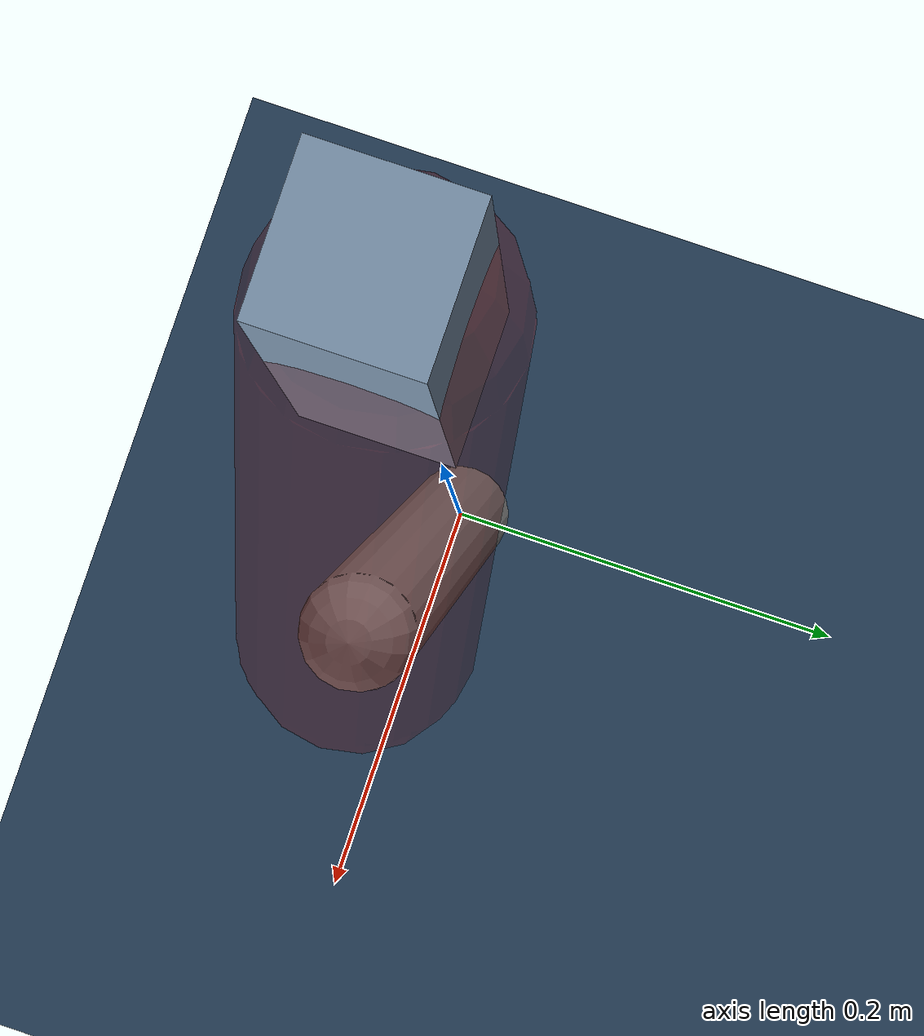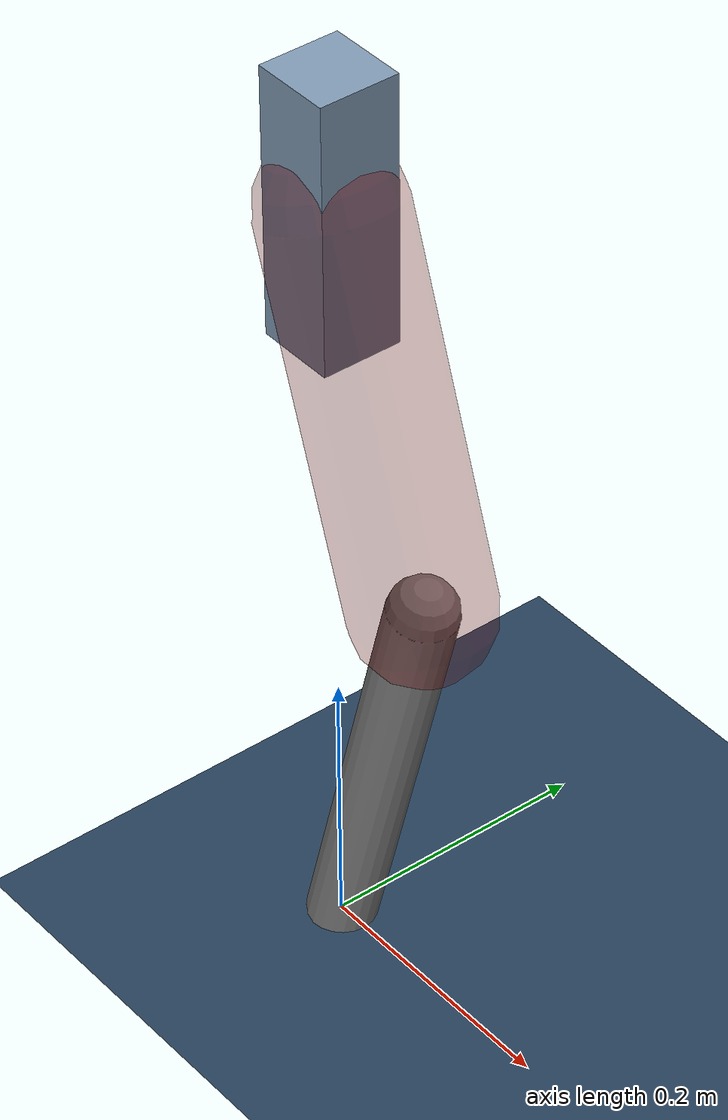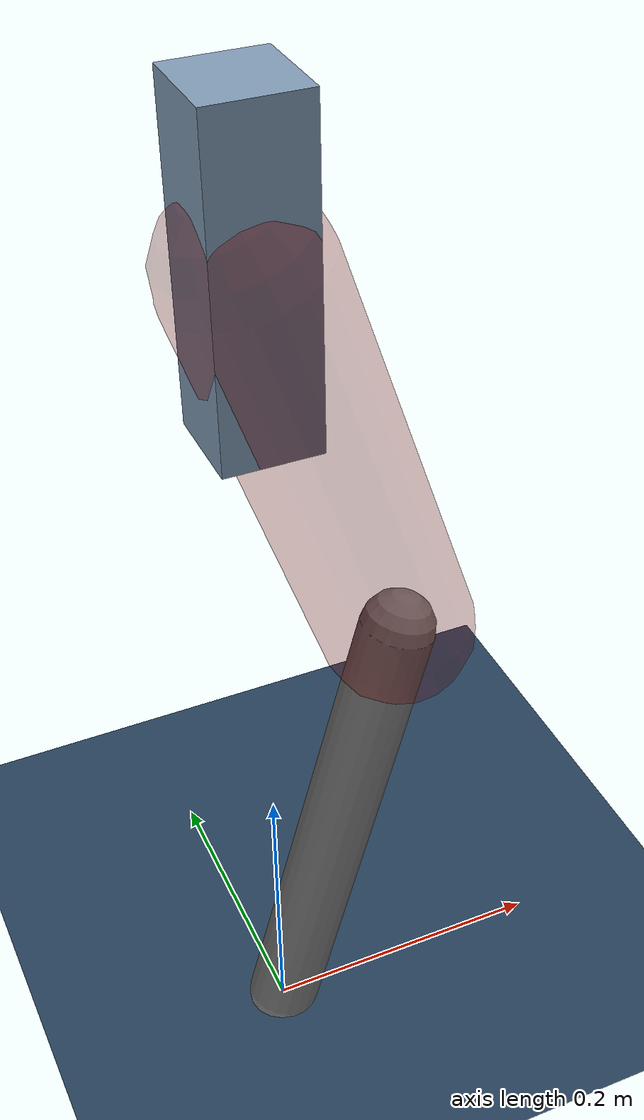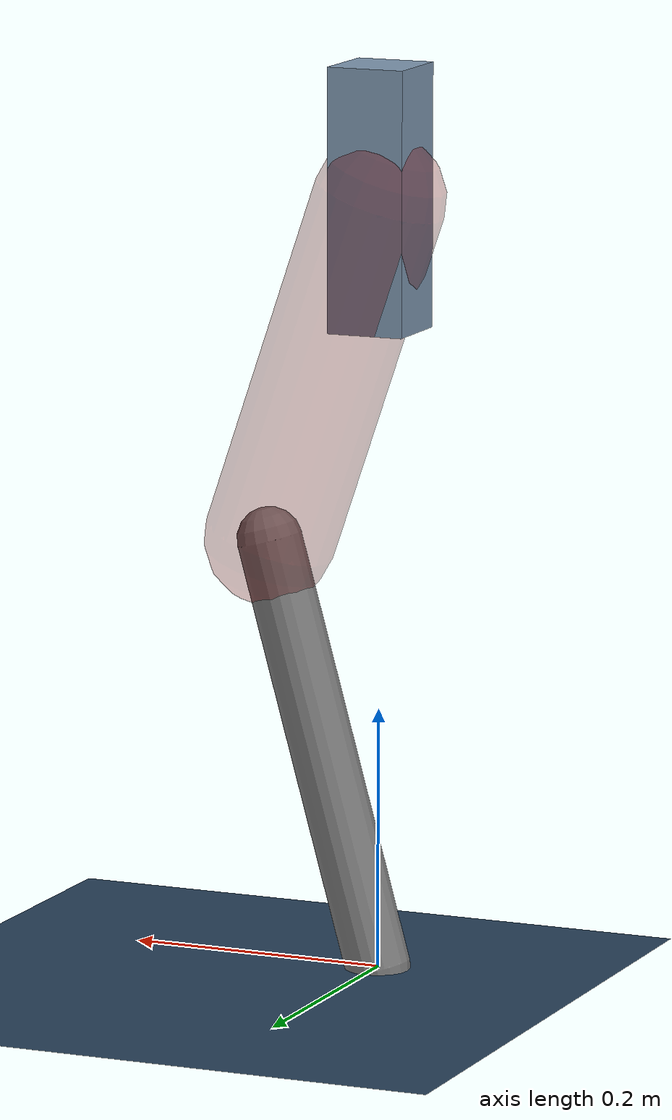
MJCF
<mujoco model="Hopper2D">
	<compiler inertiafromgeom="true" angle="radian" />
	<option timestep="0.001" integrator="implicit" cone="elliptic" solver="Newton" tolerance="1e-10" />

	<default>
		<geom contype="1" conaffinity="1" condim="3" friction="2 0.005 0.0001" solref="0.005 1" />
		<joint limited="true" damping="0.1" />
	</default>

	<asset>
		<texture name="skybox" type="skybox" builtin="gradient" rgb1=".4 .6 .8" rgb2="0 0 0" width="800" height="800" />
		<texture name="grid" type="2d" builtin="checker" rgb1=".1 .2 .3" rgb2=".2 .3 .4" width="300" height="300" mark="edge" markrgb=".2 .3 .4" />
		<material name="ground" texture="grid" texrepeat="1 1" texuniform="true" reflectance="0.1" />
		<material name="leg" rgba="0.5 0.6 0.7 1" />
	</asset>

	<worldbody>

		<geom name="floor" type="plane" size="5 5 0.25" material="ground" />

		<light directional="false" diffuse="0.8 0.8 0.8" specular="0.3 0.3 0.3" pos="0 0 2" dir="0 0 -1" />
		<light mode="targetbodycom" target="base" directional="false" diffuse="0.8 0.8 0.8" specular="0.3 0.3 0.3" pos="0 0 2" dir="0 0 -1" />

		<camera name="fixed" pos="0 -2 1" xyaxes="1 0 0 0 0 1" />
		<camera name="tracking" mode="trackcom" pos="0 -3 1" />

		<body name="root" pos="0 0 0.5898365499453326">
			<joint name="slide_x" type="slide" axis="1 0 0" range="-100 100" />
			<joint name="slide_z" type="slide" axis="0 0 1" range="0 10" />

			<body name="base" pos="0 0 0">
				<geom name="torso" type="box" size="0.03 0.03 0.1" mass="1.518" material="leg" />

				<body name="link1" pos="0 0 0" euler="0 1.2447242589361163 0">
					<joint type="hinge" axis="0 -1 0" pos="0 0 0" name="hinge1" limited="true" range="-3.14 3.14" stiffness="0" damping="0.1" />
					<geom name="thigh" type="capsule" fromto="0 0 0 0.2803893053156814 0 0" size="0.05" rgba="0.5 0 0 0.3" mass="0.9361511243523397" />

					<body name="link2" pos="0.2803893053156814 0 0" euler="0 0.5963144883057143 0">
						<joint type="hinge" axis="0 -1 0" pos="0 0 0" name="hinge2" limited="true" range="-3.14 3.14" stiffness="0" damping="0.1" />
						<geom name="shank" type="capsule" fromto="0 0 0 0.33643194834770673 0 0" size="0.025" mass="0.5129455586781653" />

					</body>
				</body>
			</body>
		</body>
	</worldbody>

	<actuator>
		<motor name="torque1" joint="hinge1" ctrlrange="-21.137863353035694 21.137863353035694" ctrllimited="true" gear="1" />
		<motor name="torque2" joint="hinge2" ctrlrange="-18.340655336059854 18.340655336059854" ctrllimited="true" gear="1" />
	</actuator>
</mujoco>
